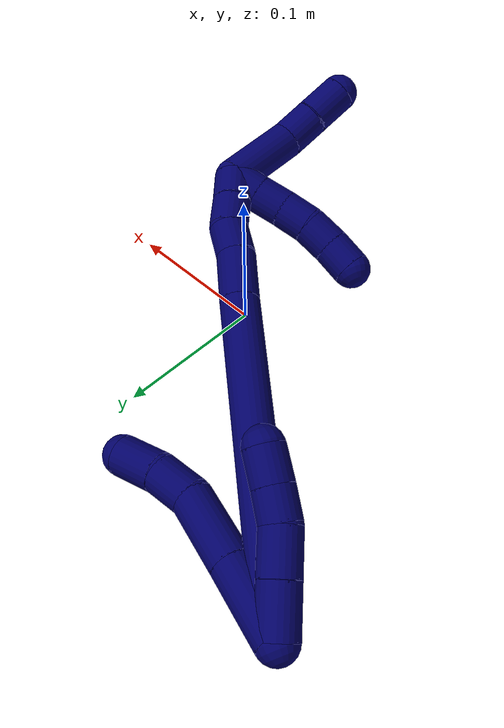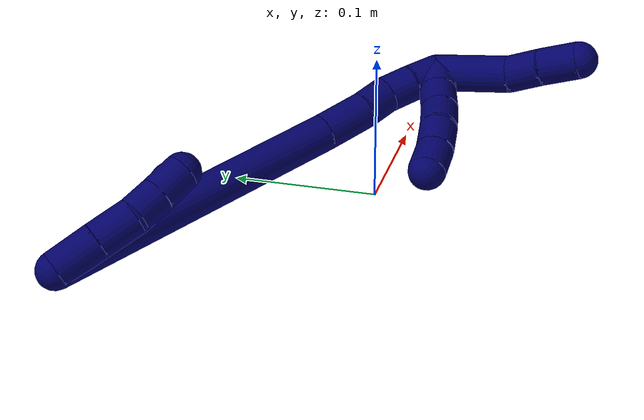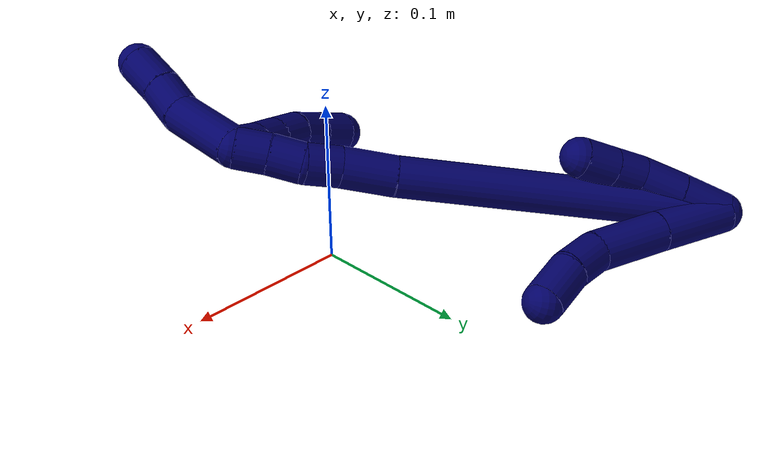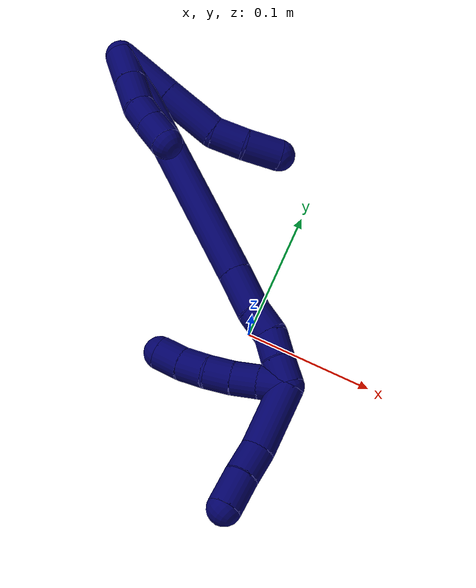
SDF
<sdf version="1.7">
 <world name="default">
  <model name="7">
   <static>0</static>
   <link name="7">
    <collision name="collision-cylinder-e_1_2_8">
     <pose>0.00535 0.006077 0.023135 -0.256858 0.220036 -0.028529</pose>
     <geometry><cylinder><radius>0.0125</radius><length>0.049022</length></cylinder></geometry>
     <surface>
      <friction><ode><mu>1.16</mu><mu2>1.16</mu2><slip1>0</slip1><slip2>0</slip2></ode></friction>
      <contact><ode><kp>1e+06</kp><kd>1</kd><max_vel>0</max_vel><min_depth>0.001</min_depth></ode></contact>
     </surface>
    </collision>
    <visual name="visual-cylinder-e_1_2_8">
     <pose>0.00535 0.006077 0.023135 -0.256858 0.220036 -0.028529</pose>
     <geometry><cylinder><radius>0.0125</radius><length>0.049022</length></cylinder></geometry>
     <material><ambient>0.003922 0 0.403922 1</ambient></material>
    </visual>
    <collision name="collision-cylinder-e_2_8_9">
     <pose>0.015885 0.018258 0.068163 -0.271925 0.224292 -0.030811</pose>
     <geometry><cylinder><radius>0.0125</radius><length>0.046623</length></cylinder></geometry>
     <surface>
      <friction><ode><mu>1.16</mu><mu2>1.16</mu2><slip1>0</slip1><slip2>0</slip2></ode></friction>
      <contact><ode><kp>1e+06</kp><kd>1</kd><max_vel>0</max_vel><min_depth>0.001</min_depth></ode></contact>
     </surface>
    </collision>
    <visual name="visual-cylinder-e_2_8_9">
     <pose>0.015885 0.018258 0.068163 -0.271925 0.224292 -0.030811</pose>
     <geometry><cylinder><radius>0.0125</radius><length>0.046623</length></cylinder></geometry>
     <material><ambient>0.003922 0 0.403922 1</ambient></material>
    </visual>
    <collision name="collision-cylinder-e_3_9_10">
     <pose>0.022176 0.031368 0.100686 -0.582678 0.086738 -0.026025</pose>
     <geometry><cylinder><radius>0.0125</radius><length>0.025559</length></cylinder></geometry>
     <surface>
      <friction><ode><mu>1.16</mu><mu2>1.16</mu2><slip1>0</slip1><slip2>0</slip2></ode></friction>
      <contact><ode><kp>1e+06</kp><kd>1</kd><max_vel>0</max_vel><min_depth>0.001</min_depth></ode></contact>
     </surface>
    </collision>
    <visual name="visual-cylinder-e_3_9_10">
     <pose>0.022176 0.031368 0.100686 -0.582678 0.086738 -0.026025</pose>
     <geometry><cylinder><radius>0.0125</radius><length>0.025559</length></cylinder></geometry>
     <material><ambient>0.003922 0 0.403922 1</ambient></material>
    </visual>
    <collision name="collision-cylinder-e_4_10_6">
     <pose>0.02586 0.048245 0.121475 -0.771082 0.179944 -0.073196</pose>
     <geometry><cylinder><radius>0.0125</radius><length>0.028797</length></cylinder></geometry>
     <surface>
      <friction><ode><mu>1.16</mu><mu2>1.16</mu2><slip1>0</slip1><slip2>0</slip2></ode></friction>
      <contact><ode><kp>1e+06</kp><kd>1</kd><max_vel>0</max_vel><min_depth>0.001</min_depth></ode></contact>
     </surface>
    </collision>
    <visual name="visual-cylinder-e_4_10_6">
     <pose>0.02586 0.048245 0.121475 -0.771082 0.179944 -0.073196</pose>
     <geometry><cylinder><radius>0.0125</radius><length>0.028797</length></cylinder></geometry>
     <material><ambient>0.003922 0 0.403922 1</ambient></material>
    </visual>
    <collision name="collision-cylinder-e_1_2_11">
     <pose>0.000324 -0.006018 0.013968 0.406813 0.021272 0.004388</pose>
     <geometry><cylinder><radius>0.0125</radius><length>0.030425</length></cylinder></geometry>
     <surface>
      <friction><ode><mu>1.16</mu><mu2>1.16</mu2><slip1>0</slip1><slip2>0</slip2></ode></friction>
      <contact><ode><kp>1e+06</kp><kd>1</kd><max_vel>0</max_vel><min_depth>0.001</min_depth></ode></contact>
     </surface>
    </collision>
    <visual name="visual-cylinder-e_1_2_11">
     <pose>0.000324 -0.006018 0.013968 0.406813 0.021272 0.004388</pose>
     <geometry><cylinder><radius>0.0125</radius><length>0.030425</length></cylinder></geometry>
     <material><ambient>0.003922 0 0.403922 1</ambient></material>
    </visual>
    <collision name="collision-cylinder-e_2_11_12">
     <pose>0.001296 -0.017364 0.040568 0.399098 0.047281 0.009564</pose>
     <geometry><cylinder><radius>0.0125</radius><length>0.02745</length></cylinder></geometry>
     <surface>
      <friction><ode><mu>1.16</mu><mu2>1.16</mu2><slip1>0</slip1><slip2>0</slip2></ode></friction>
      <contact><ode><kp>1e+06</kp><kd>1</kd><max_vel>0</max_vel><min_depth>0.001</min_depth></ode></contact>
     </surface>
    </collision>
    <visual name="visual-cylinder-e_2_11_12">
     <pose>0.001296 -0.017364 0.040568 0.399098 0.047281 0.009564</pose>
     <geometry><cylinder><radius>0.0125</radius><length>0.02745</length></cylinder></geometry>
     <material><ambient>0.003922 0 0.403922 1</ambient></material>
    </visual>
    <collision name="collision-cylinder-e_3_12_13">
     <pose>0.001721 -0.02443 0.06305 0.17477 -0.022378 -0.001961</pose>
     <geometry><cylinder><radius>0.0125</radius><length>0.020009</length></cylinder></geometry>
     <surface>
      <friction><ode><mu>1.16</mu><mu2>1.16</mu2><slip1>0</slip1><slip2>0</slip2></ode></friction>
      <contact><ode><kp>1e+06</kp><kd>1</kd><max_vel>0</max_vel><min_depth>0.001</min_depth></ode></contact>
     </surface>
    </collision>
    <visual name="visual-cylinder-e_3_12_13">
     <pose>0.001721 -0.02443 0.06305 0.17477 -0.022378 -0.001961</pose>
     <geometry><cylinder><radius>0.0125</radius><length>0.020009</length></cylinder></geometry>
     <material><ambient>0.003922 0 0.403922 1</ambient></material>
    </visual>
    <collision name="collision-cylinder-e_4_13_5">
     <pose>0.000958 -0.027826 0.083819 0.15057 -0.04877 -0.003679</pose>
     <geometry><cylinder><radius>0.0125</radius><length>0.022116</length></cylinder></geometry>
     <surface>
      <friction><ode><mu>1.16</mu><mu2>1.16</mu2><slip1>0</slip1><slip2>0</slip2></ode></friction>
      <contact><ode><kp>1e+06</kp><kd>1</kd><max_vel>0</max_vel><min_depth>0.001</min_depth></ode></contact>
     </surface>
    </collision>
    <visual name="visual-cylinder-e_4_13_5">
     <pose>0.000958 -0.027826 0.083819 0.15057 -0.04877 -0.003679</pose>
     <geometry><cylinder><radius>0.0125</radius><length>0.022116</length></cylinder></geometry>
     <material><ambient>0.003922 0 0.403922 1</ambient></material>
    </visual>
    <collision name="collision-cylinder-e_1_2_14">
     <pose>0.023352 -0.018685 0.097623 0.189112 0.230762 0.021982</pose>
     <geometry><cylinder><radius>0.0125</radius><length>0.204202</length></cylinder></geometry>
     <surface>
      <friction><ode><mu>1.16</mu><mu2>1.16</mu2><slip1>0</slip1><slip2>0</slip2></ode></friction>
      <contact><ode><kp>1e+06</kp><kd>1</kd><max_vel>0</max_vel><min_depth>0.001</min_depth></ode></contact>
     </surface>
    </collision>
    <visual name="visual-cylinder-e_1_2_14">
     <pose>0.023352 -0.018685 0.097623 0.189112 0.230762 0.021982</pose>
     <geometry><cylinder><radius>0.0125</radius><length>0.204202</length></cylinder></geometry>
     <material><ambient>0.003922 0 0.403922 1</ambient></material>
    </visual>
    <collision name="collision-cylinder-e_2_14_15">
     <pose>0.049828 -0.041118 0.211238 0.230209 0.18788 0.021785</pose>
     <geometry><cylinder><radius>0.0125</radius><length>0.033441</length></cylinder></geometry>
     <surface>
      <friction><ode><mu>1.16</mu><mu2>1.16</mu2><slip1>0</slip1><slip2>0</slip2></ode></friction>
      <contact><ode><kp>1e+06</kp><kd>1</kd><max_vel>0</max_vel><min_depth>0.001</min_depth></ode></contact>
     </surface>
    </collision>
    <visual name="visual-cylinder-e_2_14_15">
     <pose>0.049828 -0.041118 0.211238 0.230209 0.18788 0.021785</pose>
     <geometry><cylinder><radius>0.0125</radius><length>0.033441</length></cylinder></geometry>
     <material><ambient>0.003922 0 0.403922 1</ambient></material>
    </visual>
    <collision name="collision-cylinder-e_3_15_16">
     <pose>0.054432 -0.045758 0.237996 0.082659 0.136225 0.005642</pose>
     <geometry><cylinder><radius>0.0125</radius><length>0.021807</length></cylinder></geometry>
     <surface>
      <friction><ode><mu>1.16</mu><mu2>1.16</mu2><slip1>0</slip1><slip2>0</slip2></ode></friction>
      <contact><ode><kp>1e+06</kp><kd>1</kd><max_vel>0</max_vel><min_depth>0.001</min_depth></ode></contact>
     </surface>
    </collision>
    <visual name="visual-cylinder-e_3_15_16">
     <pose>0.054432 -0.045758 0.237996 0.082659 0.136225 0.005642</pose>
     <geometry><cylinder><radius>0.0125</radius><length>0.021807</length></cylinder></geometry>
     <material><ambient>0.003922 0 0.403922 1</ambient></material>
    </visual>
    <collision name="collision-cylinder-e_4_16_17">
     <pose>0.058127 -0.050546 0.257866 0.404353 0.220033 0.045277</pose>
     <geometry><cylinder><radius>0.0125</radius><length>0.020294</length></cylinder></geometry>
     <surface>
      <friction><ode><mu>1.16</mu><mu2>1.16</mu2><slip1>0</slip1><slip2>0</slip2></ode></friction>
      <contact><ode><kp>1e+06</kp><kd>1</kd><max_vel>0</max_vel><min_depth>0.001</min_depth></ode></contact>
     </surface>
    </collision>
    <visual name="visual-cylinder-e_4_16_17">
     <pose>0.058127 -0.050546 0.257866 0.404353 0.220033 0.045277</pose>
     <geometry><cylinder><radius>0.0125</radius><length>0.020294</length></cylinder></geometry>
     <material><ambient>0.003922 0 0.403922 1</ambient></material>
    </visual>
    <collision name="collision-cylinder-e_5_17_1">
     <pose>0.06308 -0.057651 0.276177 0.335422 0.273736 0.046627</pose>
     <geometry><cylinder><radius>0.0125</radius><length>0.020256</length></cylinder></geometry>
     <surface>
      <friction><ode><mu>1.16</mu><mu2>1.16</mu2><slip1>0</slip1><slip2>0</slip2></ode></friction>
      <contact><ode><kp>1e+06</kp><kd>1</kd><max_vel>0</max_vel><min_depth>0.001</min_depth></ode></contact>
     </surface>
    </collision>
    <visual name="visual-cylinder-e_5_17_1">
     <pose>0.06308 -0.057651 0.276177 0.335422 0.273736 0.046627</pose>
     <geometry><cylinder><radius>0.0125</radius><length>0.020256</length></cylinder></geometry>
     <material><ambient>0.003922 0 0.403922 1</ambient></material>
    </visual>
    <collision name="collision-cylinder-e_1_1_18">
     <pose>0.076659 -0.081134 0.295324 1.11496 0.447662 0.281967</pose>
     <geometry><cylinder><radius>0.0125</radius><length>0.050093</length></cylinder></geometry>
     <surface>
      <friction><ode><mu>1.16</mu><mu2>1.16</mu2><slip1>0</slip1><slip2>0</slip2></ode></friction>
      <contact><ode><kp>1e+06</kp><kd>1</kd><max_vel>0</max_vel><min_depth>0.001</min_depth></ode></contact>
     </surface>
    </collision>
    <visual name="visual-cylinder-e_1_1_18">
     <pose>0.076659 -0.081134 0.295324 1.11496 0.447662 0.281967</pose>
     <geometry><cylinder><radius>0.0125</radius><length>0.050093</length></cylinder></geometry>
     <material><ambient>0.003922 0 0.403922 1</ambient></material>
    </visual>
    <collision name="collision-cylinder-e_2_18_19">
     <pose>0.089212 -0.112235 0.309591 1.19055 0.145748 0.098798</pose>
     <geometry><cylinder><radius>0.0125</radius><length>0.023572</length></cylinder></geometry>
     <surface>
      <friction><ode><mu>1.16</mu><mu2>1.16</mu2><slip1>0</slip1><slip2>0</slip2></ode></friction>
      <contact><ode><kp>1e+06</kp><kd>1</kd><max_vel>0</max_vel><min_depth>0.001</min_depth></ode></contact>
     </surface>
    </collision>
    <visual name="visual-cylinder-e_2_18_19">
     <pose>0.089212 -0.112235 0.309591 1.19055 0.145748 0.098798</pose>
     <geometry><cylinder><radius>0.0125</radius><length>0.023572</length></cylinder></geometry>
     <material><ambient>0.003922 0 0.403922 1</ambient></material>
    </visual>
    <collision name="collision-cylinder-e_3_19_4">
     <pose>0.093711 -0.134803 0.31919 1.14879 0.213267 0.138328</pose>
     <geometry><cylinder><radius>0.0125</radius><length>0.026336</length></cylinder></geometry>
     <surface>
      <friction><ode><mu>1.16</mu><mu2>1.16</mu2><slip1>0</slip1><slip2>0</slip2></ode></friction>
      <contact><ode><kp>1e+06</kp><kd>1</kd><max_vel>0</max_vel><min_depth>0.001</min_depth></ode></contact>
     </surface>
    </collision>
    <visual name="visual-cylinder-e_3_19_4">
     <pose>0.093711 -0.134803 0.31919 1.14879 0.213267 0.138328</pose>
     <geometry><cylinder><radius>0.0125</radius><length>0.026336</length></cylinder></geometry>
     <material><ambient>0.003922 0 0.403922 1</ambient></material>
    </visual>
    <collision name="collision-cylinder-e_1_1_20">
     <pose>0.06869 -0.065946 0.277268 2.5819 0.291375 0.944117</pose>
     <geometry><cylinder><radius>0.0125</radius><length>0.02</length></cylinder></geometry>
     <surface>
      <friction><ode><mu>1.16</mu><mu2>1.16</mu2><slip1>0</slip1><slip2>0</slip2></ode></friction>
      <contact><ode><kp>1e+06</kp><kd>1</kd><max_vel>0</max_vel><min_depth>0.001</min_depth></ode></contact>
     </surface>
    </collision>
    <visual name="visual-cylinder-e_1_1_20">
     <pose>0.06869 -0.065946 0.277268 2.5819 0.291375 0.944117</pose>
     <geometry><cylinder><radius>0.0125</radius><length>0.02</length></cylinder></geometry>
     <material><ambient>0.003922 0 0.403922 1</ambient></material>
    </visual>
    <collision name="collision-cylinder-e_2_20_21">
     <pose>0.074094 -0.076552 0.261206 2.53436 0.25589 0.779247</pose>
     <geometry><cylinder><radius>0.0125</radius><length>0.02</length></cylinder></geometry>
     <surface>
      <friction><ode><mu>1.16</mu><mu2>1.16</mu2><slip1>0</slip1><slip2>0</slip2></ode></friction>
      <contact><ode><kp>1e+06</kp><kd>1</kd><max_vel>0</max_vel><min_depth>0.001</min_depth></ode></contact>
     </surface>
    </collision>
    <visual name="visual-cylinder-e_2_20_21">
     <pose>0.074094 -0.076552 0.261206 2.53436 0.25589 0.779247</pose>
     <geometry><cylinder><radius>0.0125</radius><length>0.02</length></cylinder></geometry>
     <material><ambient>0.003922 0 0.403922 1</ambient></material>
    </visual>
    <collision name="collision-cylinder-e_3_21_22">
     <pose>0.078361 -0.087201 0.244853 2.59385 0.174439 0.603508</pose>
     <geometry><cylinder><radius>0.0125</radius><length>0.02</length></cylinder></geometry>
     <surface>
      <friction><ode><mu>1.16</mu><mu2>1.16</mu2><slip1>0</slip1><slip2>0</slip2></ode></friction>
      <contact><ode><kp>1e+06</kp><kd>1</kd><max_vel>0</max_vel><min_depth>0.001</min_depth></ode></contact>
     </surface>
    </collision>
    <visual name="visual-cylinder-e_3_21_22">
     <pose>0.078361 -0.087201 0.244853 2.59385 0.174439 0.603508</pose>
     <geometry><cylinder><radius>0.0125</radius><length>0.02</length></cylinder></geometry>
     <material><ambient>0.003922 0 0.403922 1</ambient></material>
    </visual>
    <collision name="collision-cylinder-e_4_22_23">
     <pose>0.082775 -0.095911 0.227502 2.7607 0.27117 1.23167</pose>
     <geometry><cylinder><radius>0.0125</radius><length>0.02</length></cylinder></geometry>
     <surface>
      <friction><ode><mu>1.16</mu><mu2>1.16</mu2><slip1>0</slip1><slip2>0</slip2></ode></friction>
      <contact><ode><kp>1e+06</kp><kd>1</kd><max_vel>0</max_vel><min_depth>0.001</min_depth></ode></contact>
     </surface>
    </collision>
    <visual name="visual-cylinder-e_4_22_23">
     <pose>0.082775 -0.095911 0.227502 2.7607 0.27117 1.23167</pose>
     <geometry><cylinder><radius>0.0125</radius><length>0.02</length></cylinder></geometry>
     <material><ambient>0.003922 0 0.403922 1</ambient></material>
    </visual>
    <collision name="collision-cylinder-e_5_23_3">
     <pose>0.087102 -0.102319 0.209108 2.85096 0.165561 1.03151</pose>
     <geometry><cylinder><radius>0.0125</radius><length>0.02</length></cylinder></geometry>
     <surface>
      <friction><ode><mu>1.16</mu><mu2>1.16</mu2><slip1>0</slip1><slip2>0</slip2></ode></friction>
      <contact><ode><kp>1e+06</kp><kd>1</kd><max_vel>0</max_vel><min_depth>0.001</min_depth></ode></contact>
     </surface>
    </collision>
    <visual name="visual-cylinder-e_5_23_3">
     <pose>0.087102 -0.102319 0.209108 2.85096 0.165561 1.03151</pose>
     <geometry><cylinder><radius>0.0125</radius><length>0.02</length></cylinder></geometry>
     <material><ambient>0.003922 0 0.403922 1</ambient></material>
    </visual>
    <collision name="collision-sphere-3">
     <pose>0.08875 -0.105145 0.199658 0 -0 0</pose>
     <geometry><sphere><radius>0.0125</radius></sphere></geometry>
     <surface>
      <friction><ode><mu>1.16</mu><mu2>1.16</mu2><slip1>0</slip1><slip2>0</slip2></ode></friction>
      <contact><ode><kp>1e+06</kp><kd>1</kd><max_vel>0</max_vel><min_depth>0.001</min_depth></ode></contact>
     </surface>
    </collision>
    <visual name="visual-sphere-3">
     <pose>0.08875 -0.105145 0.199658 0 -0 0</pose>
     <geometry><sphere><radius>0.0125</radius></sphere></geometry>
     <material><ambient>0.003922 0 0.403922 1</ambient></material>
    </visual>
    <collision name="collision-sphere-23">
     <pose>0.085453 -0.099493 0.218558 0 -0 0</pose>
     <geometry><sphere><radius>0.0125</radius></sphere></geometry>
     <surface>
      <friction><ode><mu>1.16</mu><mu2>1.16</mu2><slip1>0</slip1><slip2>0</slip2></ode></friction>
      <contact><ode><kp>1e+06</kp><kd>1</kd><max_vel>0</max_vel><min_depth>0.001</min_depth></ode></contact>
     </surface>
    </collision>
    <visual name="visual-sphere-23">
     <pose>0.085453 -0.099493 0.218558 0 -0 0</pose>
     <geometry><sphere><radius>0.0125</radius></sphere></geometry>
     <material><ambient>0.003922 0 0.403922 1</ambient></material>
    </visual>
    <collision name="collision-sphere-22">
     <pose>0.080096 -0.092329 0.236446 0 -0 0</pose>
     <geometry><sphere><radius>0.0125</radius></sphere></geometry>
     <surface>
      <friction><ode><mu>1.16</mu><mu2>1.16</mu2><slip1>0</slip1><slip2>0</slip2></ode></friction>
      <contact><ode><kp>1e+06</kp><kd>1</kd><max_vel>0</max_vel><min_depth>0.001</min_depth></ode></contact>
     </surface>
    </collision>
    <visual name="visual-sphere-22">
     <pose>0.080096 -0.092329 0.236446 0 -0 0</pose>
     <geometry><sphere><radius>0.0125</radius></sphere></geometry>
     <material><ambient>0.003922 0 0.403922 1</ambient></material>
    </visual>
    <collision name="collision-sphere-21">
     <pose>0.076625 -0.082072 0.253261 0 -0 0</pose>
     <geometry><sphere><radius>0.0125</radius></sphere></geometry>
     <surface>
      <friction><ode><mu>1.16</mu><mu2>1.16</mu2><slip1>0</slip1><slip2>0</slip2></ode></friction>
      <contact><ode><kp>1e+06</kp><kd>1</kd><max_vel>0</max_vel><min_depth>0.001</min_depth></ode></contact>
     </surface>
    </collision>
    <visual name="visual-sphere-21">
     <pose>0.076625 -0.082072 0.253261 0 -0 0</pose>
     <geometry><sphere><radius>0.0125</radius></sphere></geometry>
     <material><ambient>0.003922 0 0.403922 1</ambient></material>
    </visual>
    <collision name="collision-sphere-20">
     <pose>0.071563 -0.071032 0.269151 0 -0 0</pose>
     <geometry><sphere><radius>0.0125</radius></sphere></geometry>
     <surface>
      <friction><ode><mu>1.16</mu><mu2>1.16</mu2><slip1>0</slip1><slip2>0</slip2></ode></friction>
      <contact><ode><kp>1e+06</kp><kd>1</kd><max_vel>0</max_vel><min_depth>0.001</min_depth></ode></contact>
     </surface>
    </collision>
    <visual name="visual-sphere-20">
     <pose>0.071563 -0.071032 0.269151 0 -0 0</pose>
     <geometry><sphere><radius>0.0125</radius></sphere></geometry>
     <material><ambient>0.003922 0 0.403922 1</ambient></material>
    </visual>
    <collision name="collision-sphere-4">
     <pose>0.096498 -0.146544 0.324461 0 -0 0</pose>
     <geometry><sphere><radius>0.0125</radius></sphere></geometry>
     <surface>
      <friction><ode><mu>1.16</mu><mu2>1.16</mu2><slip1>0</slip1><slip2>0</slip2></ode></friction>
      <contact><ode><kp>1e+06</kp><kd>1</kd><max_vel>0</max_vel><min_depth>0.001</min_depth></ode></contact>
     </surface>
    </collision>
    <visual name="visual-sphere-4">
     <pose>0.096498 -0.146544 0.324461 0 -0 0</pose>
     <geometry><sphere><radius>0.0125</radius></sphere></geometry>
     <material><ambient>0.003922 0 0.403922 1</ambient></material>
    </visual>
    <collision name="collision-sphere-11">
     <pose>0.000647 -0.012036 0.027936 0 -0 0</pose>
     <geometry><sphere><radius>0.0125</radius></sphere></geometry>
     <surface>
      <friction><ode><mu>1.16</mu><mu2>1.16</mu2><slip1>0</slip1><slip2>0</slip2></ode></friction>
      <contact><ode><kp>1e+06</kp><kd>1</kd><max_vel>0</max_vel><min_depth>0.001</min_depth></ode></contact>
     </surface>
    </collision>
    <visual name="visual-sphere-11">
     <pose>0.000647 -0.012036 0.027936 0 -0 0</pose>
     <geometry><sphere><radius>0.0125</radius></sphere></geometry>
     <material><ambient>0.003922 0 0.403922 1</ambient></material>
    </visual>
    <collision name="collision-sphere-6">
     <pose>0.028437 0.058118 0.131635 0 -0 0</pose>
     <geometry><sphere><radius>0.0125</radius></sphere></geometry>
     <surface>
      <friction><ode><mu>1.16</mu><mu2>1.16</mu2><slip1>0</slip1><slip2>0</slip2></ode></friction>
      <contact><ode><kp>1e+06</kp><kd>1</kd><max_vel>0</max_vel><min_depth>0.001</min_depth></ode></contact>
     </surface>
    </collision>
    <visual name="visual-sphere-6">
     <pose>0.028437 0.058118 0.131635 0 -0 0</pose>
     <geometry><sphere><radius>0.0125</radius></sphere></geometry>
     <material><ambient>0.003922 0 0.403922 1</ambient></material>
    </visual>
    <collision name="collision-sphere-10">
     <pose>0.023284 0.038373 0.111316 0 -0 0</pose>
     <geometry><sphere><radius>0.0125</radius></sphere></geometry>
     <surface>
      <friction><ode><mu>1.16</mu><mu2>1.16</mu2><slip1>0</slip1><slip2>0</slip2></ode></friction>
      <contact><ode><kp>1e+06</kp><kd>1</kd><max_vel>0</max_vel><min_depth>0.001</min_depth></ode></contact>
     </surface>
    </collision>
    <visual name="visual-sphere-10">
     <pose>0.023284 0.038373 0.111316 0 -0 0</pose>
     <geometry><sphere><radius>0.0125</radius></sphere></geometry>
     <material><ambient>0.003922 0 0.403922 1</ambient></material>
    </visual>
    <collision name="collision-sphere-9">
     <pose>0.021069 0.024362 0.090055 0 -0 0</pose>
     <geometry><sphere><radius>0.0125</radius></sphere></geometry>
     <surface>
      <friction><ode><mu>1.16</mu><mu2>1.16</mu2><slip1>0</slip1><slip2>0</slip2></ode></friction>
      <contact><ode><kp>1e+06</kp><kd>1</kd><max_vel>0</max_vel><min_depth>0.001</min_depth></ode></contact>
     </surface>
    </collision>
    <visual name="visual-sphere-9">
     <pose>0.021069 0.024362 0.090055 0 -0 0</pose>
     <geometry><sphere><radius>0.0125</radius></sphere></geometry>
     <material><ambient>0.003922 0 0.403922 1</ambient></material>
    </visual>
    <collision name="collision-sphere-2">
     <geometry><sphere><radius>0.0125</radius></sphere></geometry>
     <surface>
      <friction><ode><mu>1.16</mu><mu2>1.16</mu2><slip1>0</slip1><slip2>0</slip2></ode></friction>
      <contact><ode><kp>1e+06</kp><kd>1</kd><max_vel>0</max_vel><min_depth>0.001</min_depth></ode></contact>
     </surface>
    </collision>
    <visual name="visual-sphere-2">
     <geometry><sphere><radius>0.0125</radius></sphere></geometry>
     <material><ambient>0.003922 0 0.403922 1</ambient></material>
    </visual>
    <collision name="collision-sphere-19">
     <pose>0.090924 -0.123063 0.313919 0 -0 0</pose>
     <geometry><sphere><radius>0.0125</radius></sphere></geometry>
     <surface>
      <friction><ode><mu>1.16</mu><mu2>1.16</mu2><slip1>0</slip1><slip2>0</slip2></ode></friction>
      <contact><ode><kp>1e+06</kp><kd>1</kd><max_vel>0</max_vel><min_depth>0.001</min_depth></ode></contact>
     </surface>
    </collision>
    <visual name="visual-sphere-19">
     <pose>0.090924 -0.123063 0.313919 0 -0 0</pose>
     <geometry><sphere><radius>0.0125</radius></sphere></geometry>
     <material><ambient>0.003922 0 0.403922 1</ambient></material>
    </visual>
    <collision name="collision-sphere-8">
     <pose>0.0107 0.012153 0.04627 0 -0 0</pose>
     <geometry><sphere><radius>0.0125</radius></sphere></geometry>
     <surface>
      <friction><ode><mu>1.16</mu><mu2>1.16</mu2><slip1>0</slip1><slip2>0</slip2></ode></friction>
      <contact><ode><kp>1e+06</kp><kd>1</kd><max_vel>0</max_vel><min_depth>0.001</min_depth></ode></contact>
     </surface>
    </collision>
    <visual name="visual-sphere-8">
     <pose>0.0107 0.012153 0.04627 0 -0 0</pose>
     <geometry><sphere><radius>0.0125</radius></sphere></geometry>
     <material><ambient>0.003922 0 0.403922 1</ambient></material>
    </visual>
    <collision name="collision-sphere-12">
     <pose>0.001945 -0.022691 0.0532 0 -0 0</pose>
     <geometry><sphere><radius>0.0125</radius></sphere></geometry>
     <surface>
      <friction><ode><mu>1.16</mu><mu2>1.16</mu2><slip1>0</slip1><slip2>0</slip2></ode></friction>
      <contact><ode><kp>1e+06</kp><kd>1</kd><max_vel>0</max_vel><min_depth>0.001</min_depth></ode></contact>
     </surface>
    </collision>
    <visual name="visual-sphere-12">
     <pose>0.001945 -0.022691 0.0532 0 -0 0</pose>
     <geometry><sphere><radius>0.0125</radius></sphere></geometry>
     <material><ambient>0.003922 0 0.403922 1</ambient></material>
    </visual>
    <collision name="collision-sphere-13">
     <pose>0.001497 -0.026169 0.072899 0 -0 0</pose>
     <geometry><sphere><radius>0.0125</radius></sphere></geometry>
     <surface>
      <friction><ode><mu>1.16</mu><mu2>1.16</mu2><slip1>0</slip1><slip2>0</slip2></ode></friction>
      <contact><ode><kp>1e+06</kp><kd>1</kd><max_vel>0</max_vel><min_depth>0.001</min_depth></ode></contact>
     </surface>
    </collision>
    <visual name="visual-sphere-13">
     <pose>0.001497 -0.026169 0.072899 0 -0 0</pose>
     <geometry><sphere><radius>0.0125</radius></sphere></geometry>
     <material><ambient>0.003922 0 0.403922 1</ambient></material>
    </visual>
    <collision name="collision-sphere-5">
     <pose>0.000419 -0.029483 0.094739 0 -0 0</pose>
     <geometry><sphere><radius>0.0125</radius></sphere></geometry>
     <surface>
      <friction><ode><mu>1.16</mu><mu2>1.16</mu2><slip1>0</slip1><slip2>0</slip2></ode></friction>
      <contact><ode><kp>1e+06</kp><kd>1</kd><max_vel>0</max_vel><min_depth>0.001</min_depth></ode></contact>
     </surface>
    </collision>
    <visual name="visual-sphere-5">
     <pose>0.000419 -0.029483 0.094739 0 -0 0</pose>
     <geometry><sphere><radius>0.0125</radius></sphere></geometry>
     <material><ambient>0.003922 0 0.403922 1</ambient></material>
    </visual>
    <collision name="collision-sphere-14">
     <pose>0.046705 -0.03737 0.195245 0 -0 0</pose>
     <geometry><sphere><radius>0.0125</radius></sphere></geometry>
     <surface>
      <friction><ode><mu>1.16</mu><mu2>1.16</mu2><slip1>0</slip1><slip2>0</slip2></ode></friction>
      <contact><ode><kp>1e+06</kp><kd>1</kd><max_vel>0</max_vel><min_depth>0.001</min_depth></ode></contact>
     </surface>
    </collision>
    <visual name="visual-sphere-14">
     <pose>0.046705 -0.03737 0.195245 0 -0 0</pose>
     <geometry><sphere><radius>0.0125</radius></sphere></geometry>
     <material><ambient>0.003922 0 0.403922 1</ambient></material>
    </visual>
    <collision name="collision-sphere-15">
     <pose>0.052951 -0.044866 0.227231 0 -0 0</pose>
     <geometry><sphere><radius>0.0125</radius></sphere></geometry>
     <surface>
      <friction><ode><mu>1.16</mu><mu2>1.16</mu2><slip1>0</slip1><slip2>0</slip2></ode></friction>
      <contact><ode><kp>1e+06</kp><kd>1</kd><max_vel>0</max_vel><min_depth>0.001</min_depth></ode></contact>
     </surface>
    </collision>
    <visual name="visual-sphere-15">
     <pose>0.052951 -0.044866 0.227231 0 -0 0</pose>
     <geometry><sphere><radius>0.0125</radius></sphere></geometry>
     <material><ambient>0.003922 0 0.403922 1</ambient></material>
    </visual>
    <collision name="collision-sphere-16">
     <pose>0.055912 -0.04665 0.248762 0 -0 0</pose>
     <geometry><sphere><radius>0.0125</radius></sphere></geometry>
     <surface>
      <friction><ode><mu>1.16</mu><mu2>1.16</mu2><slip1>0</slip1><slip2>0</slip2></ode></friction>
      <contact><ode><kp>1e+06</kp><kd>1</kd><max_vel>0</max_vel><min_depth>0.001</min_depth></ode></contact>
     </surface>
    </collision>
    <visual name="visual-sphere-16">
     <pose>0.055912 -0.04665 0.248762 0 -0 0</pose>
     <geometry><sphere><radius>0.0125</radius></sphere></geometry>
     <material><ambient>0.003922 0 0.403922 1</ambient></material>
    </visual>
    <collision name="collision-sphere-17">
     <pose>0.060342 -0.054442 0.26697 0 -0 0</pose>
     <geometry><sphere><radius>0.0125</radius></sphere></geometry>
     <surface>
      <friction><ode><mu>1.16</mu><mu2>1.16</mu2><slip1>0</slip1><slip2>0</slip2></ode></friction>
      <contact><ode><kp>1e+06</kp><kd>1</kd><max_vel>0</max_vel><min_depth>0.001</min_depth></ode></contact>
     </surface>
    </collision>
    <visual name="visual-sphere-17">
     <pose>0.060342 -0.054442 0.26697 0 -0 0</pose>
     <geometry><sphere><radius>0.0125</radius></sphere></geometry>
     <material><ambient>0.003922 0 0.403922 1</ambient></material>
    </visual>
    <collision name="collision-sphere-1">
     <pose>0.065818 -0.060861 0.285385 0 -0 0</pose>
     <geometry><sphere><radius>0.0125</radius></sphere></geometry>
     <surface>
      <friction><ode><mu>1.16</mu><mu2>1.16</mu2><slip1>0</slip1><slip2>0</slip2></ode></friction>
      <contact><ode><kp>1e+06</kp><kd>1</kd><max_vel>0</max_vel><min_depth>0.001</min_depth></ode></contact>
     </surface>
    </collision>
    <visual name="visual-sphere-1">
     <pose>0.065818 -0.060861 0.285385 0 -0 0</pose>
     <geometry><sphere><radius>0.0125</radius></sphere></geometry>
     <material><ambient>0.003922 0 0.403922 1</ambient></material>
    </visual>
    <collision name="collision-sphere-18">
     <pose>0.087501 -0.101407 0.305263 0 -0 0</pose>
     <geometry><sphere><radius>0.0125</radius></sphere></geometry>
     <surface>
      <friction><ode><mu>1.16</mu><mu2>1.16</mu2><slip1>0</slip1><slip2>0</slip2></ode></friction>
      <contact><ode><kp>1e+06</kp><kd>1</kd><max_vel>0</max_vel><min_depth>0.001</min_depth></ode></contact>
     </surface>
    </collision>
    <visual name="visual-sphere-18">
     <pose>0.087501 -0.101407 0.305263 0 -0 0</pose>
     <geometry><sphere><radius>0.0125</radius></sphere></geometry>
     <material><ambient>0.003922 0 0.403922 1</ambient></material>
    </visual>
    <inertial>
     <pose>0.038301 -0.034166 0.150599 0 -0 0</pose>
     <mass>0.75</mass>
     <inertia><ixx>0.000799</ixx><ixy>0</ixy><ixz>0</ixz><iyy>0.000765</iyy><iyz>0</iyz><izz>2e-06</izz></inertia>
    </inertial>
   </link>
   <pose>-0.181261 0.156873 0.017748 -0.911628 1.02434 -1.40003</pose>
  </model>
 </world>
</sdf>
